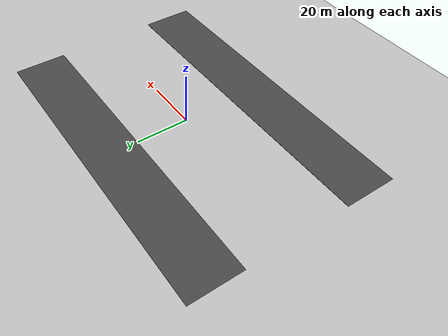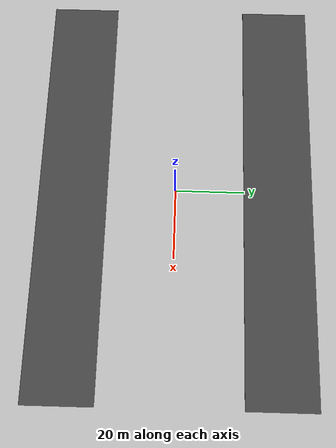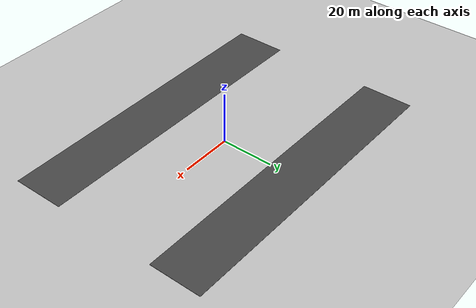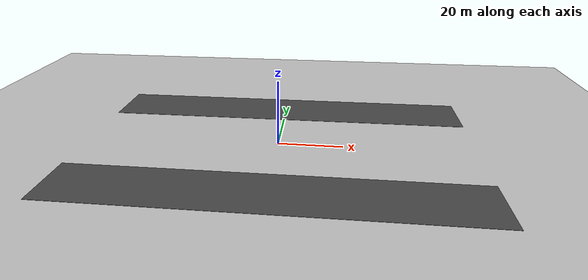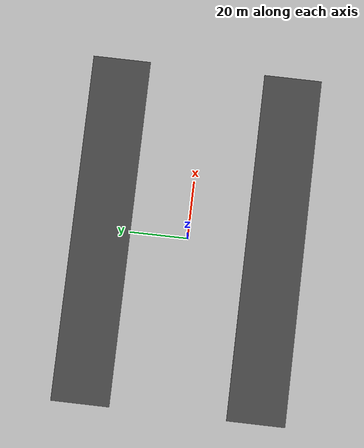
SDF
<sdf version="1.4">
 <world name="default">
  <model name="ground_plane">
   <static>1</static>
   <link name="link">
    <collision name="collision">
     <geometry><plane><normal>0 0 1</normal><size>180 60</size></plane></geometry>
     <surface><friction><ode><mu>100</mu><mu2>50</mu2></ode></friction></surface>
    </collision>
    <visual name="visual">
     <cast_shadows>0</cast_shadows>
     <geometry><plane><normal>0 0 1</normal><size>180 60</size></plane></geometry>
     <material>
      <script><uri>file://media/materials/scripts/gazebo.material</uri><name>Gazebo/Grey</name></script>
     </material>
    </visual>
    <velocity_decay><linear>0</linear><angular>0</angular></velocity_decay>
   </link>
  </model>
  <light name="sun" type="directional">
   <pose>0 0 10 0 -0 0</pose>
   <diffuse>0.8 0.8 0.8 1</diffuse>
   <specular>0.2 0.2 0.2 1</specular>
   <attenuation>
    <range>1000</range>
    <constant>0.9</constant>
    <linear>0.01</linear>
    <quadratic>0.001</quadratic>
   </attenuation>
   <direction>-0.5 0.1 -0.9</direction>
  </light>
  <physics type="ode">
   <max_step_size>0.001</max_step_size>
   <real_time_factor>1</real_time_factor>
   <real_time_update_rate>1000</real_time_update_rate>
   <gravity>0 0 -9.8</gravity>
  </physics>
  <scene><ambient>0.4 0.4 0.4 1</ambient><background>0.7 0.7 0.7 1</background><shadows>1</shadows></scene>
  <spherical_coordinates>
   <surface_model>EARTH_WGS84</surface_model>
   <latitude_deg>0</latitude_deg>
   <longitude_deg>0</longitude_deg>
   <elevation>0</elevation>
   <heading_deg>0</heading_deg>
  </spherical_coordinates>
  <model name="asphalt_plane_7">
   <static>1</static>
   <link name="link">
    <collision name="collision"><geometry><box><size>120 20 0.1</size></box></geometry></collision>
    <visual name="visual">
     <cast_shadows>0</cast_shadows>
     <geometry><box><size>120 20 0.1</size></box></geometry>
     <material>
      <script>
       <uri>model://asphalt_plane/materials/scripts</uri>
       <uri>model://asphalt_plane/materials/textures</uri>
       <name>vrc/asphalt</name>
      </script>
     </material>
    </visual>
    <velocity_decay><linear>0</linear><angular>0</angular></velocity_decay>
   </link>
   <pose>0.039499 29.9598 -0.045493 0 -0 0</pose>
  </model>
  <model name="asphalt_plane_6">
   <static>1</static>
   <link name="link">
    <collision name="collision"><geometry><box><size>120 20 0.1</size></box></geometry></collision>
    <visual name="visual">
     <cast_shadows>0</cast_shadows>
     <geometry><box><size>120 20 0.1</size></box></geometry>
     <material>
      <script>
       <uri>model://asphalt_plane/materials/scripts</uri>
       <uri>model://asphalt_plane/materials/textures</uri>
       <name>vrc/asphalt</name>
      </script>
     </material>
    </visual>
    <velocity_decay><linear>0</linear><angular>0</angular></velocity_decay>
   </link>
   <pose>0 -30 0 0 -0 0</pose>
  </model>
  <light name="sun_0" type="directional">
   <pose>-15 -97.5267 10 0 -0 0</pose>
   <diffuse>0.8 0.8 0.8 1</diffuse>
   <specular>0.2 0.2 0.2 1</specular>
   <attenuation>
    <range>1000</range>
    <constant>0.9</constant>
    <linear>0.01</linear>
    <quadratic>0.001</quadratic>
   </attenuation>
   <direction>-0.5 0.1 -0.9</direction>
  </light>
  <model name="grey_wall">
   <static>1</static>
   <link name="link">
    <pose>0 0 -0.9 0 -0 0</pose>
    <collision name="collision"><geometry><box><size>7.5 0.2 2.8</size></box></geometry></collision>
    <visual name="visual">
     <cast_shadows>0</cast_shadows>
     <geometry><box><size>7.5 0.2 2.8</size></box></geometry>
     <material>
      <script>
       <uri>model://grey_wall/materials/scripts</uri>
       <uri>model://grey_wall/materials/textures</uri>
       <name>vrc/grey_wall</name>
      </script>
     </material>
    </visual>
    <velocity_decay><linear>0</linear><angular>0</angular></velocity_decay>
   </link>
   <pose>-1.83136 19.64 -0.9 1.56643 -0 0</pose>
  </model>
  <model name="grey_wall_0">
   <static>1</static>
   <link name="link">
    <pose>0 0 -0.9 0 -0 0</pose>
    <collision name="collision"><geometry><box><size>7.5 0.2 2.8</size></box></geometry></collision>
    <visual name="visual">
     <cast_shadows>0</cast_shadows>
     <geometry><box><size>7.5 0.2 2.8</size></box></geometry>
     <material>
      <script>
       <uri>model://grey_wall/materials/scripts</uri>
       <uri>model://grey_wall/materials/textures</uri>
       <name>vrc/grey_wall</name>
      </script>
     </material>
    </visual>
    <velocity_decay><linear>0</linear><angular>0</angular></velocity_decay>
   </link>
   <pose>-1.2807 -19.6379 -0.9 -1.56406 0 0</pose>
  </model>
  <model name="grey_wall_1">
   <static>1</static>
   <link name="link">
    <pose>0 0 -0.9 0 -0 0</pose>
    <collision name="collision"><geometry><box><size>7.5 0.2 2.8</size></box></geometry></collision>
    <visual name="visual">
     <cast_shadows>0</cast_shadows>
     <geometry><box><size>7.5 0.2 2.8</size></box></geometry>
     <material>
      <script>
       <uri>model://grey_wall/materials/scripts</uri>
       <uri>model://grey_wall/materials/textures</uri>
       <name>vrc/grey_wall</name>
      </script>
     </material>
    </visual>
    <velocity_decay><linear>0</linear><angular>0</angular></velocity_decay>
   </link>
   <pose>-1.66187 14.2521 -0.5 1.57649 -0 0</pose>
  </model>
  <model name="grey_wall_2">
   <static>1</static>
   <link name="link">
    <pose>0 0 -0.9 0 -0 0</pose>
    <collision name="collision"><geometry><box><size>7.5 0.2 2.8</size></box></geometry></collision>
    <visual name="visual">
     <cast_shadows>0</cast_shadows>
     <geometry><box><size>7.5 0.2 2.8</size></box></geometry>
     <material>
      <script>
       <uri>model://grey_wall/materials/scripts</uri>
       <uri>model://grey_wall/materials/textures</uri>
       <name>vrc/grey_wall</name>
      </script>
     </material>
    </visual>
    <velocity_decay><linear>0</linear><angular>0</angular></velocity_decay>
   </link>
   <pose>-1.48841 8.92225 -0.9 1.56753 -0 0</pose>
  </model>
  <model name="grey_wall_3">
   <static>1</static>
   <link name="link">
    <pose>0 0 -0.9 0 -0 0</pose>
    <collision name="collision"><geometry><box><size>7.5 0.2 2.8</size></box></geometry></collision>
    <visual name="visual">
     <cast_shadows>0</cast_shadows>
     <geometry><box><size>7.5 0.2 2.8</size></box></geometry>
     <material>
      <script>
       <uri>model://grey_wall/materials/scripts</uri>
       <uri>model://grey_wall/materials/textures</uri>
       <name>vrc/grey_wall</name>
      </script>
     </material>
    </visual>
    <velocity_decay><linear>0</linear><angular>0</angular></velocity_decay>
   </link>
   <pose>-1.37592 3.68415 -0.9 1.55824 -0 0</pose>
  </model>
  <model name="grey_wall_4">
   <static>1</static>
   <link name="link">
    <pose>0 0 -0.9 0 -0 0</pose>
    <collision name="collision"><geometry><box><size>7.5 0.2 2.8</size></box></geometry></collision>
    <visual name="visual">
     <cast_shadows>0</cast_shadows>
     <geometry><box><size>7.5 0.2 2.8</size></box></geometry>
     <material>
      <script>
       <uri>model://grey_wall/materials/scripts</uri>
       <uri>model://grey_wall/materials/textures</uri>
       <name>vrc/grey_wall</name>
      </script>
     </material>
    </visual>
    <velocity_decay><linear>0</linear><angular>0</angular></velocity_decay>
   </link>
   <pose>-1.32572 -9.78388 -0.9 -1.55825 0 0</pose>
  </model>
  <model name="grey_wall_5">
   <static>1</static>
   <link name="link">
    <pose>0 0 -0.9 0 -0 0</pose>
    <collision name="collision"><geometry><box><size>7.5 0.2 2.8</size></box></geometry></collision>
    <visual name="visual">
     <cast_shadows>0</cast_shadows>
     <geometry><box><size>7.5 0.2 2.8</size></box></geometry>
     <material>
      <script>
       <uri>model://grey_wall/materials/scripts</uri>
       <uri>model://grey_wall/materials/textures</uri>
       <name>vrc/grey_wall</name>
      </script>
     </material>
    </visual>
    <velocity_decay><linear>0</linear><angular>0</angular></velocity_decay>
   </link>
   <pose>-1.36799 -4.40834 -0.9 -1.5689 0 0</pose>
  </model>
  <model name="grey_wall_6">
   <static>1</static>
   <link name="link">
    <pose>0 0 -0.9 0 -0 0</pose>
    <collision name="collision"><geometry><box><size>7.5 0.2 2.8</size></box></geometry></collision>
    <visual name="visual">
     <cast_shadows>0</cast_shadows>
     <geometry><box><size>7.5 0.2 2.8</size></box></geometry>
     <material>
      <script>
       <uri>model://grey_wall/materials/scripts</uri>
       <uri>model://grey_wall/materials/textures</uri>
       <name>vrc/grey_wall</name>
      </script>
     </material>
    </visual>
    <velocity_decay><linear>0</linear><angular>0</angular></velocity_decay>
   </link>
   <pose>-1.24621 -15.0695 -0.9 -1.57834 0 0</pose>
  </model>
  <model name="grey_wall_7">
   <static>1</static>
   <link name="link">
    <pose>0 0 -0.9 0 -0 0</pose>
    <collision name="collision"><geometry><box><size>7.5 0.2 2.8</size></box></geometry></collision>
    <visual name="visual">
     <cast_shadows>0</cast_shadows>
     <geometry><box><size>7.5 0.2 2.8</size></box></geometry>
     <material>
      <script>
       <uri>model://grey_wall/materials/scripts</uri>
       <uri>model://grey_wall/materials/textures</uri>
       <name>vrc/grey_wall</name>
      </script>
     </material>
    </visual>
    <velocity_decay><linear>0</linear><angular>0</angular></velocity_decay>
   </link>
   <pose>-9.90929 35.4401 -0.9 0 -0 0</pose>
  </model>
 </world>
</sdf>
